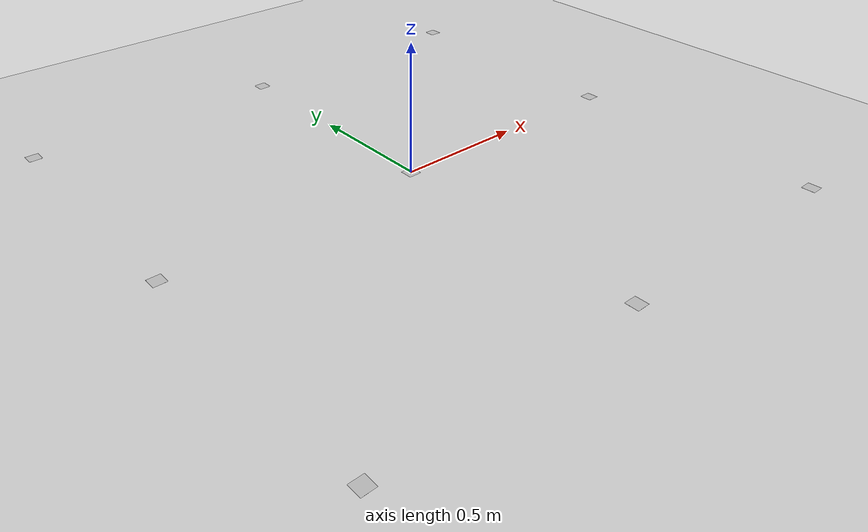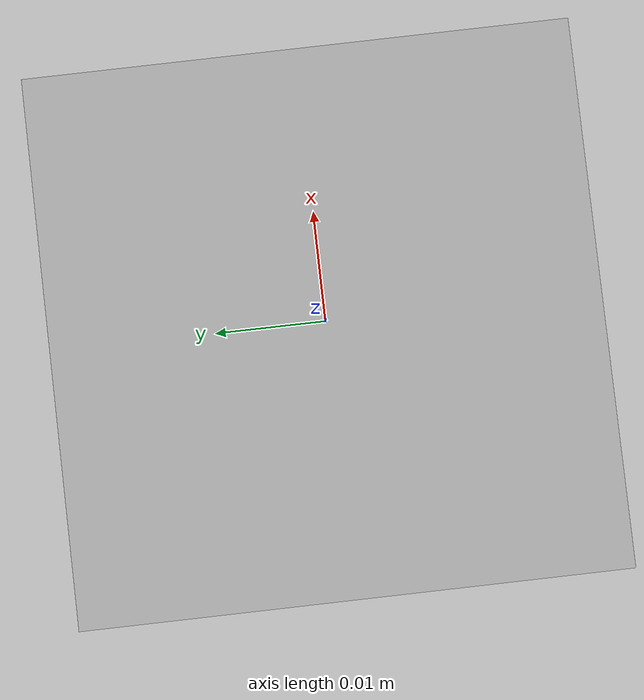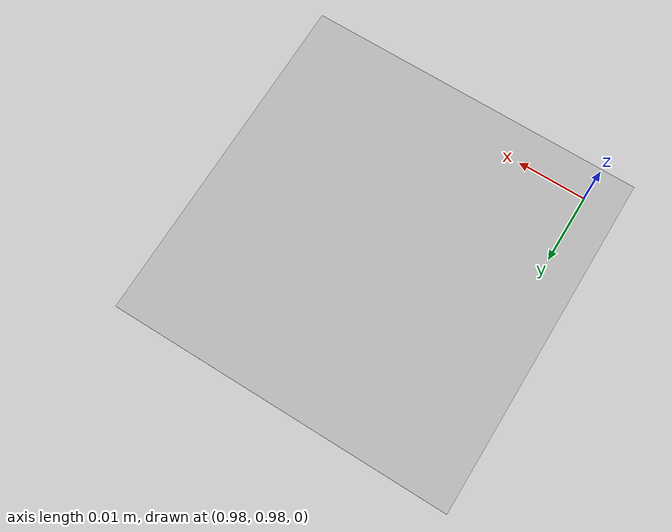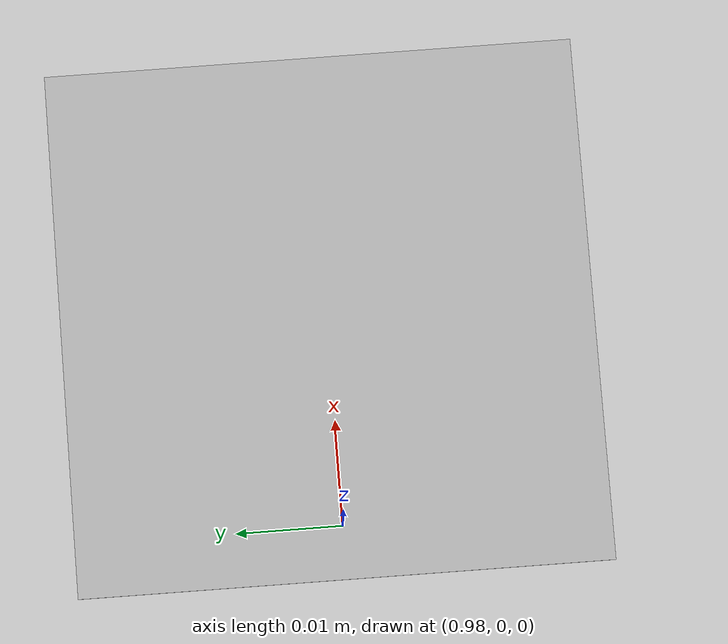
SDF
<?xml version="1.0" ?>
<sdf version="1.4">
  <!-- We use a custom world for the rrbot so that the camera angle is launched correctly -->

  <world name="default">
    <include>
      <uri>model://asphalt_plane</uri>
    </include>

    <!-- Global light source -->
    <include>
      <uri>model://sun</uri>
    </include>

    <include>
      <uri>model://ar_tag_0_0</uri>
    </include>

    <include>
      <uri>model://ar_tag_0_1</uri>
    </include>

    <include>
      <uri>model://ar_tag_0_-1</uri>
    </include>

    <include>
      <uri>model://ar_tag_1_0</uri>
    </include>

    <include>
      <uri>model://ar_tag_1_1</uri>
    </include>

    <include>
      <uri>model://ar_tag_1_-1</uri>
    </include>

    <include>
      <uri>model://ar_tag_-1_0</uri>
    </include>

    <include>
      <uri>model://ar_tag_-1_1</uri>
    </include>

    <include>
      <uri>model://ar_tag_-1_-1</uri>
    </include>

    <!-- Focus camera on tall pendulum -->
    <gui fullscreen='0'>
      <camera name='user_camera'>
        <pose>4.927360 -4.376610 3.740080 0.000000 0.275643 2.356190</pose>
        <view_controller>orbit</view_controller>
      </camera>
    </gui>

    <physics name='default_physics' default='0' type='ode'>
      <gravity>0 0 -9.8066</gravity>
      <ode>
        <solver>
          <type>quick</type>
          <iters>150</iters>
          <sor>1.3</sor>
          <use_dynamic_moi_rescaling>0</use_dynamic_moi_rescaling>
        </solver>
        <constraints>
          <cfm>0.00000</cfm>
          <erp>0.2</erp>
          <contact_max_correcting_vel>100</contact_max_correcting_vel>
          <contact_surface_layer>0.001</contact_surface_layer>
        </constraints>
      </ode>
      <max_step_size>0.0025</max_step_size>
      <real_time_factor>1</real_time_factor>
      <real_time_update_rate>400</real_time_update_rate>
      <magnetic_field>6e-06 2.3e-05 -4.2e-05</magnetic_field>
    </physics>

  </world>
</sdf>

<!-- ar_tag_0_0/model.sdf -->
<sdf version="1.5">
  <model name="ar_tag_0_0">
    <static>true</static>
    <link name="link">
      <collision name="collision">
        <geometry>
          <box>
            <size>.05 .05 .0001</size>
          </box>
        </geometry>
      </collision>
      <visual name="visual">
        <cast_shadows>false</cast_shadows>
        <geometry>
          <box>
            <size>.05 .05 .0001</size>
          </box>
        </geometry>
        <material>
          <script>
            <uri>model://ar_tag_0_0/materials/scripts</uri>
            <uri>model://ar_tag_0_0/materials/textures</uri>
            <name>ar_tag_0_0</name>
          </script>
        </material>
      </visual>
    </link>
  </model>
</sdf>

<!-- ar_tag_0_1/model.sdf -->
<sdf version="1.5">
  <model name="ar_tag_0_1">
    <pose>0 1.0 0 0 0 0</pose>
    <static>true</static>
    <link name="link">
      <collision name="collision">
        <geometry>
          <box>
            <size>0.05 0.05 .0001</size>
          </box>
        </geometry>
      </collision>
      <visual name="visual">
        <cast_shadows>false</cast_shadows>
        <geometry>
          <box>
            <size>0.05 0.05 .0001</size>
          </box>
        </geometry>
        <material>
          <script>
            <uri>model://ar_tag_0_1/materials/scripts</uri>
            <uri>model://ar_tag_0_1/materials/textures</uri>
            <name>ar_tag_0_1</name>
          </script>
        </material>
      </visual>
    </link>
  </model>
</sdf>

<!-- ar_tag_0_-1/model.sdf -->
<sdf version="1.5">
  <model name="ar_tag_0_-1">
    <pose>0 -1.0 0 0 0 0</pose>
    <static>true</static>
    <link name="link">
      <collision name="collision">
        <geometry>
          <box>
            <size>0.05 0.05 .0001</size>
          </box>
        </geometry>
      </collision>
      <visual name="visual">
        <cast_shadows>false</cast_shadows>
        <geometry>
          <box>
            <size>0.05 0.05 .0001</size>
          </box>
        </geometry>
        <material>
          <script>
            <uri>model://ar_tag_0_-1/materials/scripts</uri>
            <uri>model://ar_tag_0_-1/materials/textures</uri>
            <name>ar_tag_0_-1</name>
          </script>
        </material>
      </visual>
    </link>
  </model>
</sdf>

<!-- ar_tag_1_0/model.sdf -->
<sdf version="1.5">
  <model name="ar_tag_1_0">
    <pose>1.0 0 0 0 0 0</pose>
    <static>true</static>
    <link name="link">
      <collision name="collision">
        <geometry>
          <box>
            <size>0.05 0.05 .0001</size>
          </box>
        </geometry>
      </collision>
      <visual name="visual">
        <cast_shadows>false</cast_shadows>
        <geometry>
          <box>
            <size>0.05 0.05 .0001</size>
          </box>
        </geometry>
        <material>
          <script>
            <uri>model://ar_tag_1_0/materials/scripts</uri>
            <uri>model://ar_tag_1_0/materials/textures</uri>
            <name>ar_tag_1_0</name>
          </script>
        </material>
      </visual>
    </link>
  </model>
</sdf>

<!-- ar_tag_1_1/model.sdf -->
<sdf version="1.5">
  <model name="ar_tag_1_1">
    <pose>1.0 1.0 0 0 0 0</pose>
    <static>true</static>
    <link name="link">
      <collision name="collision">
        <geometry>
          <box>
            <size>0.05 0.05 .0001</size>
          </box>
        </geometry>
      </collision>
      <visual name="visual">
        <cast_shadows>false</cast_shadows>
        <geometry>
          <box>
            <size>0.05 0.05 .0001</size>
          </box>
        </geometry>
        <material>
          <script>
            <uri>model://ar_tag_1_1/materials/scripts</uri>
            <uri>model://ar_tag_1_1/materials/textures</uri>
            <name>ar_tag_1_1</name>
          </script>
        </material>
      </visual>
    </link>
  </model>
</sdf>

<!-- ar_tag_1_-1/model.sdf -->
<sdf version="1.5">
  <model name="ar_tag_1_-1">
    <pose>1.0 -1.0 0 0 0 0</pose>
    <static>true</static>
    <link name="link">
      <collision name="collision">
        <geometry>
          <box>
            <size>0.05 0.05 .0001</size>
          </box>
        </geometry>
      </collision>
      <visual name="visual">
        <cast_shadows>false</cast_shadows>
        <geometry>
          <box>
            <size>0.05 0.05 .0001</size>
          </box>
        </geometry>
        <material>
          <script>
            <uri>model://ar_tag_1_-1/materials/scripts</uri>
            <uri>model://ar_tag_1_-1/materials/textures</uri>
            <name>ar_tag_1_-1</name>
          </script>
        </material>
      </visual>
    </link>
  </model>
</sdf>

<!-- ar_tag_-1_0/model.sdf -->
<sdf version="1.5">
  <model name="ar_tag_-1_0">
    <pose>-1.0 0 0 0 0 0</pose>
    <static>true</static>
    <link name="link">
      <collision name="collision">
        <geometry>
          <box>
            <size>0.05 0.05 .0001</size>
          </box>
        </geometry>
      </collision>
      <visual name="visual">
        <cast_shadows>false</cast_shadows>
        <geometry>
          <box>
            <size>0.05 0.05 .0001</size>
          </box>
        </geometry>
        <material>
          <script>
            <uri>model://ar_tag_-1_0/materials/scripts</uri>
            <uri>model://ar_tag_-1_0/materials/textures</uri>
            <name>ar_tag_-1_0</name>
          </script>
        </material>
      </visual>
    </link>
  </model>
</sdf>

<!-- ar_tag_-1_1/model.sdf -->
<sdf version="1.5">
  <model name="ar_tag_-1_1">
    <pose>-1.0 1.0 0 0 0 0</pose>
    <static>true</static>
    <link name="link">
      <collision name="collision">
        <geometry>
          <box>
            <size>0.05 0.05 .0001</size>
          </box>
        </geometry>
      </collision>
      <visual name="visual">
        <cast_shadows>false</cast_shadows>
        <geometry>
          <box>
            <size>0.05 0.05 .0001</size>
          </box>
        </geometry>
        <material>
          <script>
            <uri>model://ar_tag_-1_1/materials/scripts</uri>
            <uri>model://ar_tag_-1_1/materials/textures</uri>
            <name>ar_tag_-1_1</name>
          </script>
        </material>
      </visual>
    </link>
  </model>
</sdf>

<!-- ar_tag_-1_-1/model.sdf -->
<sdf version="1.5">
  <model name="ar_tag_-1_-1">
    <pose>-1.0 -1.0 0 0 0 0</pose>
    <static>true</static>
    <link name="link">
      <collision name="collision">
        <geometry>
          <box>
            <size>0.05 0.05 .0001</size>
          </box>
        </geometry>
      </collision>
      <visual name="visual">
        <cast_shadows>false</cast_shadows>
        <geometry>
          <box>
            <size>0.05 0.05 .0001</size>
          </box>
        </geometry>
        <material>
          <script>
            <uri>model://ar_tag_-1_-1/materials/scripts</uri>
            <uri>model://ar_tag_-1_-1/materials/textures</uri>
            <name>ar_tag_-1_-1</name>
          </script>
        </material>
      </visual>
    </link>
  </model>
</sdf>
